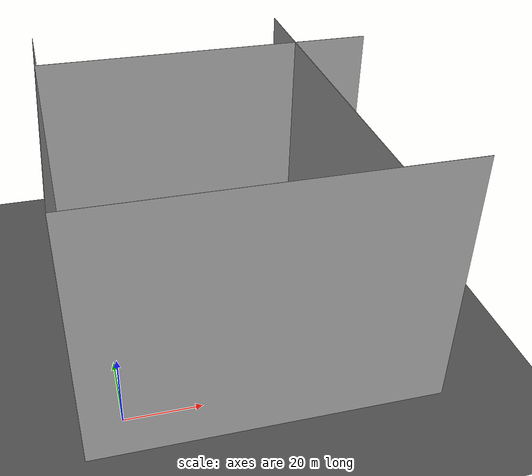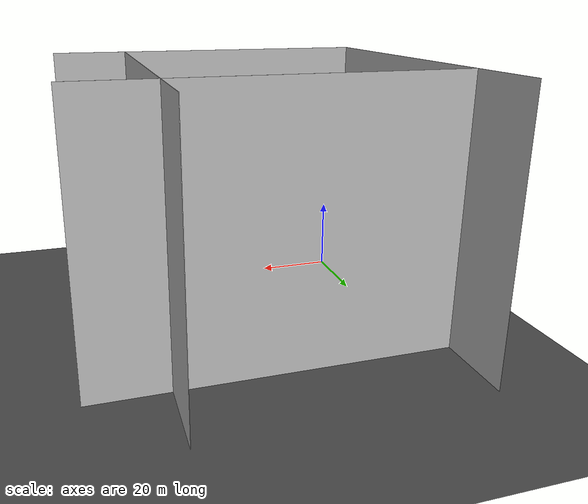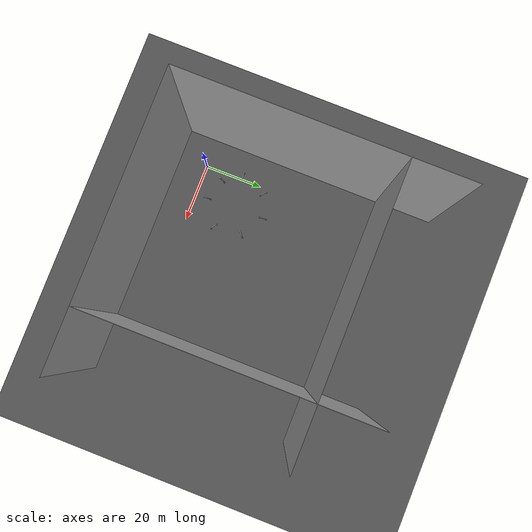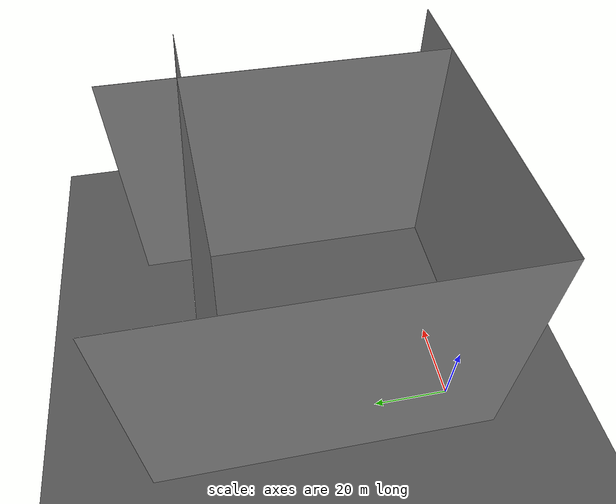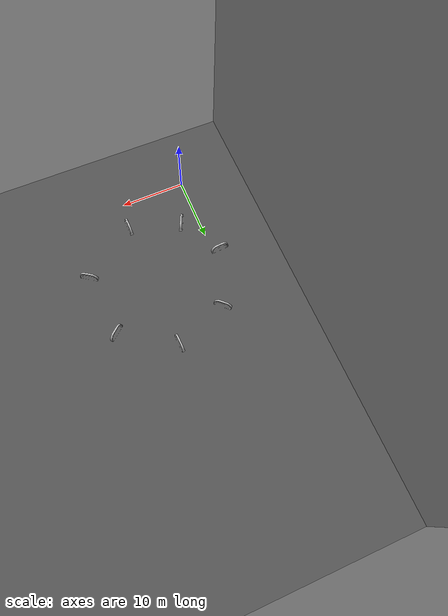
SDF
<sdf version="1.6">
 <world name="dubai_track">
  <plugin name="ros_interface_plugin" filename="librotors_gazebo_ros_interface_plugin.so"/>
  <physics name="default_physics" default="0" type="ode">
   <max_step_size>0.001</max_step_size>
   <real_time_update_rate>2000</real_time_update_rate>
   <real_time_factor>1</real_time_factor>
  </physics>
  <model name="ground_plane">
   <static>1</static>
   <link name="link">
    <collision name="collision">
     <geometry><plane><normal>0 0 1</normal><size>120 120</size></plane></geometry>
     <surface><friction><ode><mu>100</mu><mu2>50</mu2></ode></friction></surface>
    </collision>
    <visual name="visual">
     <cast_shadows>0</cast_shadows>
     <geometry><plane><normal>0 0 1</normal><size>120 120</size></plane></geometry>
     <material>
      <script>
       <uri>model://race_track/iros_materials/materials/scripts/asphalt.material</uri>
       <uri>model://race_track/iros_materials/materials/textures</uri>
       <name>iros/asphalt</name>
      </script>
     </material>
    </visual>
    <sensor name="my_contact" type="contact"><contact><collision>collision</collision></contact></sensor>
   </link>
  </model>
  <model name="wall_1">
   <pose>-10 35 34 0 -0 0</pose>
   <static>1</static>
   <link name="link">
    <inertial><mass>1</mass></inertial>
    <collision name="collision"><geometry><box><size>0.1 90 70</size></box></geometry></collision>
    <visual name="visual">
     <geometry><box><size>0.1 90 70</size></box></geometry>
     <material>
      <script>
       <uri>model://race_track/iros_materials/materials/scripts/sky.material</uri>
       <uri>model://race_track/iros_materials/materials/textures</uri>
       <name>iros/sky</name>
      </script>
     </material>
    </visual>
   </link>
  </model>
  <model name="wall_2">
   <pose>60 35 34 0 -0 0</pose>
   <static>1</static>
   <link name="link">
    <inertial><mass>1</mass></inertial>
    <collision name="collision"><geometry><box><size>0.1 90 70</size></box></geometry></collision>
    <visual name="visual">
     <geometry><box><size>0.1 90 70</size></box></geometry>
     <material>
      <script>
       <uri>model://race_track/iros_materials/materials/scripts/sky.material</uri>
       <uri>model://race_track/iros_materials/materials/textures</uri>
       <name>iros/sky</name>
      </script>
     </material>
    </visual>
   </link>
  </model>
  <model name="wall_3">
   <pose>35 60 34 0 -0 0</pose>
   <static>1</static>
   <link name="link">
    <inertial><mass>1</mass></inertial>
    <collision name="collision"><geometry><box><size>90 0.1 70</size></box></geometry></collision>
    <visual name="visual">
     <geometry><box><size>90 0.1 70</size></box></geometry>
     <material>
      <script>
       <uri>model://race_track/iros_materials/materials/scripts/sky.material</uri>
       <uri>model://race_track/iros_materials/materials/textures</uri>
       <name>iros/sky</name>
      </script>
     </material>
    </visual>
   </link>
  </model>
  <model name="wall_4">
   <pose>35 -10 34 0 -0 0</pose>
   <static>1</static>
   <link name="link">
    <inertial><mass>1</mass></inertial>
    <collision name="collision"><geometry><box><size>90 0.1 70</size></box></geometry></collision>
    <visual name="visual">
     <geometry><box><size>90 0.1 70</size></box></geometry>
     <material>
      <script>
       <uri>model://race_track/iros_materials/materials/scripts/sky.material</uri>
       <uri>model://race_track/iros_materials/materials/textures</uri>
       <name>iros/sky</name>
      </script>
     </material>
    </visual>
   </link>
  </model>
  <model name="gate_1">
   <pose>2.67719 6.70695 0 0 0 -0.447182</pose>
   <static>1</static>
   <link name="gate_1_body">
    <collision name="gate_1_collision">
     <geometry><mesh><uri>model://race_track/real_world/gate/meshes/gate.stl</uri></mesh></geometry>
    </collision>
    <visual name="gate_1_visual">
     <geometry><mesh><uri>model://race_track/real_world/gate/meshes/gate.dae</uri></mesh></geometry>
    </visual>
   </link>
  </model>
  <model name="gate_2">
   <pose>10.5951 4.23611 0 0 -0 0.011479</pose>
   <static>1</static>
   <link name="gate_2_body">
    <collision name="gate_2_collision">
     <geometry><mesh><uri>model://race_track/real_world/gate/meshes/gate.stl</uri></mesh></geometry>
    </collision>
    <visual name="gate_2_visual">
     <geometry><mesh><uri>model://race_track/real_world/gate/meshes/gate.dae</uri></mesh></geometry>
    </visual>
   </link>
  </model>
  <model name="gate_3">
   <pose>19.0796 10.0924 0 0 -0 0.974806</pose>
   <static>1</static>
   <link name="gate_3_body">
    <collision name="gate_3_collision">
     <geometry><mesh><uri>model://race_track/real_world/gate/meshes/gate.stl</uri></mesh></geometry>
    </collision>
    <visual name="gate_3_visual">
     <geometry><mesh><uri>model://race_track/real_world/gate/meshes/gate.dae</uri></mesh></geometry>
    </visual>
   </link>
  </model>
  <model name="gate_11">
   <pose>18.2181 20.0025 0 0 0 -0.874979</pose>
   <static>1</static>
   <link name="gate_11_body">
    <collision name="gate_11_collision">
     <geometry><mesh><uri>model://race_track/real_world/gate/meshes/gate.stl</uri></mesh></geometry>
    </collision>
    <visual name="gate_11_visual">
     <geometry><mesh><uri>model://race_track/real_world/gate/meshes/gate.dae</uri></mesh></geometry>
    </visual>
   </link>
  </model>
  <model name="gate_12">
   <pose>10.2397 25.0567 0 0 0 -3.10152</pose>
   <static>1</static>
   <link name="gate_12_body">
    <collision name="gate_12_collision">
     <geometry><mesh><uri>model://race_track/real_world/gate/meshes/gate.stl</uri></mesh></geometry>
    </collision>
    <visual name="gate_12_visual">
     <geometry><mesh><uri>model://race_track/real_world/gate/meshes/gate.dae</uri></mesh></geometry>
    </visual>
   </link>
  </model>
  <model name="gate_13">
   <pose>2.12946 22.0464 0 0 -0 0.822026</pose>
   <static>1</static>
   <link name="gate_13_body">
    <collision name="gate_13_collision">
     <geometry><mesh><uri>model://race_track/real_world/gate/meshes/gate.stl</uri></mesh></geometry>
    </collision>
    <visual name="gate_13_visual">
     <geometry><mesh><uri>model://race_track/real_world/gate/meshes/gate.dae</uri></mesh></geometry>
    </visual>
   </link>
  </model>
  <model name="gate_14">
   <pose>-1.15213 13.1935 0 0 0 -1.5</pose>
   <static>1</static>
   <link name="gate_14_body">
    <collision name="gate_14_collision">
     <geometry><mesh><uri>model://race_track/real_world/gate/meshes/gate.stl</uri></mesh></geometry>
    </collision>
    <visual name="gate_14_visual">
     <geometry><mesh><uri>model://race_track/real_world/gate/meshes/gate.dae</uri></mesh></geometry>
    </visual>
   </link>
  </model>
  <scene><ambient>1 1 1 1</ambient><background>0.7 0.7 0.7 1</background><shadows>1</shadows></scene>
  <gravity>0 0 -9.8</gravity>
  <magnetic_field>6e-06 2.3e-05 -4.2e-05</magnetic_field>
  <atmosphere type="adiabatic"/>
  <audio><device>default</device></audio>
  <spherical_coordinates>
   <surface_model>EARTH_WGS84</surface_model>
   <latitude_deg>0</latitude_deg>
   <longitude_deg>0</longitude_deg>
   <elevation>0</elevation>
   <heading_deg>0</heading_deg>
  </spherical_coordinates>
  <light name="user_point_light_0" type="point">
   <pose>14.3744 -31.3614 1 0 -0 0</pose>
   <diffuse>0.5 0.5 0.5 1</diffuse>
   <specular>0.1 0.1 0.1 1</specular>
   <attenuation>
    <range>100</range>
    <constant>1.0</constant>
    <linear>0.0</linear>
    <quadratic>0.0</quadratic>
   </attenuation>
   <cast_shadows>0</cast_shadows>
   <direction>0 0 -1</direction>
  </light>
  <light name="user_point_light_1" type="point">
   <pose>22.1188 -31.6852 1 0 -0 0</pose>
   <diffuse>0.5 0.5 0.5 1</diffuse>
   <specular>0.1 0.1 0.1 1</specular>
   <attenuation>
    <range>100</range>
    <constant>1.0</constant>
    <linear>0.0</linear>
    <quadratic>0.0</quadratic>
   </attenuation>
   <cast_shadows>0</cast_shadows>
   <direction>0 0 -1</direction>
  </light>
  <light name="user_point_light_2" type="point">
   <pose>31.4331 -33.084 1 0 -0 0</pose>
   <diffuse>0.5 0.5 0.5 1</diffuse>
   <specular>0.1 0.1 0.1 1</specular>
   <attenuation>
    <range>100</range>
    <constant>1.0</constant>
    <linear>0.0</linear>
    <quadratic>0.0</quadratic>
   </attenuation>
   <cast_shadows>0</cast_shadows>
   <direction>0 0 -1</direction>
  </light>
  <light name="user_point_light_3" type="point">
   <pose>37.135 -35.0607 1 0 -0 0</pose>
   <diffuse>0.5 0.5 0.5 1</diffuse>
   <specular>0.1 0.1 0.1 1</specular>
   <attenuation>
    <range>100</range>
    <constant>1.0</constant>
    <linear>0.0</linear>
    <quadratic>0.0</quadratic>
   </attenuation>
   <cast_shadows>0</cast_shadows>
   <direction>0 0 -1</direction>
  </light>
  <light name="user_point_light_4" type="point">
   <pose>6.84622 -30.4097 1 0 -0 0</pose>
   <diffuse>0.5 0.5 0.5 1</diffuse>
   <specular>0.1 0.1 0.1 1</specular>
   <attenuation>
    <range>100</range>
    <constant>1.0</constant>
    <linear>0.0</linear>
    <quadratic>0.0</quadratic>
   </attenuation>
   <cast_shadows>0</cast_shadows>
   <direction>0 0 -1</direction>
  </light>
  <light name="user_point_light_5" type="point">
   <pose>1.43993 -35.6145 1 0 -0 0</pose>
   <diffuse>0.5 0.5 0.5 1</diffuse>
   <specular>0.1 0.1 0.1 1</specular>
   <attenuation>
    <range>100</range>
    <constant>1.0</constant>
    <linear>0.0</linear>
    <quadratic>0.0</quadratic>
   </attenuation>
   <cast_shadows>0</cast_shadows>
   <direction>0 0 -1</direction>
  </light>
  <light name="user_point_light_6" type="point">
   <pose>14.8 -41.0504 1 0 -0 0</pose>
   <diffuse>0.5 0.5 0.5 1</diffuse>
   <specular>0.1 0.1 0.1 1</specular>
   <attenuation>
    <range>100</range>
    <constant>1.0</constant>
    <linear>0.0</linear>
    <quadratic>0.0</quadratic>
   </attenuation>
   <cast_shadows>0</cast_shadows>
   <direction>0 0 -1</direction>
  </light>
  <light name="user_point_light_7" type="point">
   <pose>23.6794 -39.9093 1 0 -0 0</pose>
   <diffuse>0.5 0.5 0.5 1</diffuse>
   <specular>0.1 0.1 0.1 1</specular>
   <attenuation>
    <range>100</range>
    <constant>1.0</constant>
    <linear>0.0</linear>
    <quadratic>0.0</quadratic>
   </attenuation>
   <cast_shadows>0</cast_shadows>
   <direction>0 0 -1</direction>
  </light>
  <light name="user_point_light_8" type="point">
   <pose>30.8131 -42.2014 1 0 -0 0</pose>
   <diffuse>0.5 0.5 0.5 1</diffuse>
   <specular>0.1 0.1 0.1 1</specular>
   <attenuation>
    <range>100</range>
    <constant>1.0</constant>
    <linear>0.0</linear>
    <quadratic>0.0</quadratic>
   </attenuation>
   <cast_shadows>0</cast_shadows>
   <direction>0 0 -1</direction>
  </light>
  <light name="user_point_light_9" type="point">
   <pose>42.6462 -44.2737 1 0 -0 0</pose>
   <diffuse>0.5 0.5 0.5 1</diffuse>
   <specular>0.1 0.1 0.1 1</specular>
   <attenuation>
    <range>100</range>
    <constant>1.0</constant>
    <linear>0.0</linear>
    <quadratic>0.0</quadratic>
   </attenuation>
   <cast_shadows>0</cast_shadows>
   <direction>0 0 -1</direction>
  </light>
  <light name="user_directional_light_0" type="directional">
   <pose>20.2832 -37.1175 1 0 -0 0</pose>
   <diffuse>0.5 0.5 0.5 1</diffuse>
   <specular>0.1 0.1 0.1 1</specular>
   <direction>0.1 0.1 -0.9</direction>
   <attenuation>
    <range>100</range>
    <constant>1.0</constant>
    <linear>0.0</linear>
    <quadratic>0.0</quadratic>
   </attenuation>
  </light>
 </world>
</sdf>
